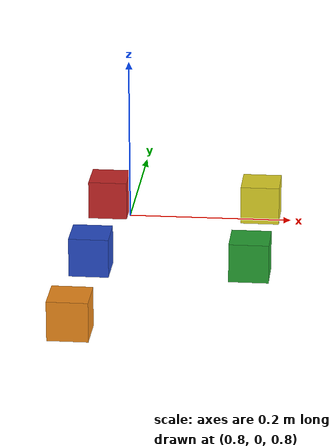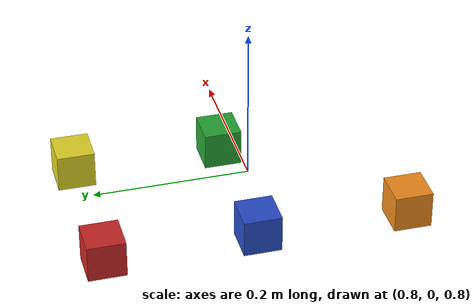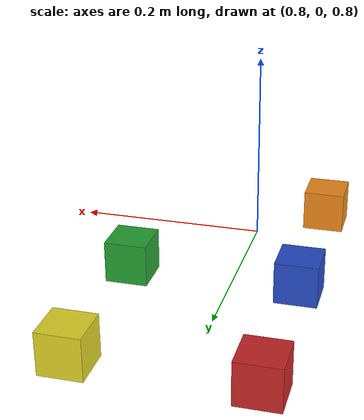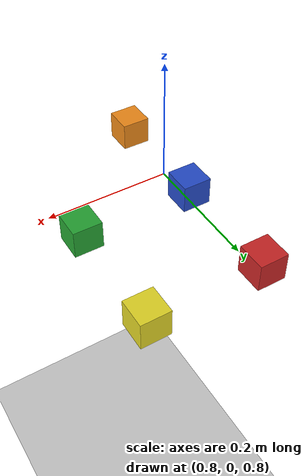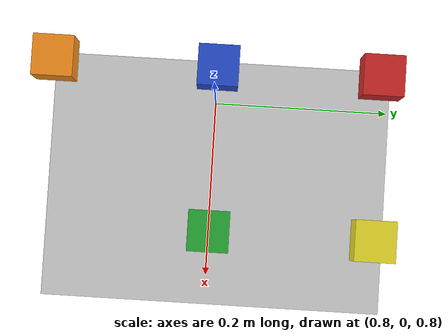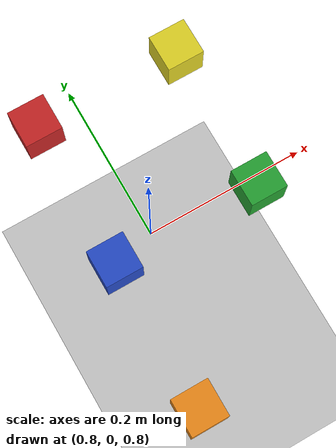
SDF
<sdf version="1.4">
 <world name="simple">
  <include><uri>model://ground_plane</uri></include>
  <include><uri>model://sun</uri></include>
  <include><uri>model://red_cube</uri><pose>0.75 0.2 0.75 0 0 0</pose></include>
  <include><uri>model://blue_cube</uri><pose>0.75 0.0 0.75 0 0 0</pose></include>
  <include><uri>model://orange_cube</uri><pose>0.75 -0.2 0.75 0 0 0</pose></include>
  <include><uri>model://yellow_cube</uri><pose>0.95 0.2 0.75 0 0 0</pose></include>
  <include><uri>model://green_cube</uri><pose>0.95 0.0 0.75 0 0 0</pose></include>
 </world>
</sdf>

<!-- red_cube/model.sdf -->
<sdf version='1.4'>
  <model name="red_cube">
      <static>0</static>
      <link name='link'>
        <inertial>
          <mass>0.4</mass>
          <inertia>
            <ixx>0.001</ixx>
            <ixy>0.000000</ixy>
            <ixz>0.000000</ixz>
            <iyy>0.001</iyy>
            <iyz>0.000000</iyz>
            <izz>0.001</izz>
          </inertia>
        </inertial>
        <collision name='collision'>
          <geometry>
            <box>
              <size>0.050 0.050 0.050</size>
            </box>
          </geometry>
          <surface>
            <friction>
              <ode>
                <mu>30.0</mu>
                <mu2>30.0</mu2>
              </ode>
            </friction>
            <contact>
              <ode>
                <kp>1000000.0</kp>
                <kd>100.0</kd>
                <max_vel>1.0</max_vel>
                <min_depth>0.002</min_depth>
              </ode>
            </contact>
          </surface>
        </collision>
        <visual name='visual'>
          <geometry>
            <box>
              <size>0.050 0.050 0.050</size>
            </box>
          </geometry>
          <material>
            <script>
              <uri>file://media/materials/scripts/gazebo.material</uri>
              <name>Gazebo/Red</name>
            </script>
          </material>
        </visual>
        <velocity_decay>
          <linear>0.000000</linear>
          <angular>0.000000</angular>
        </velocity_decay>
        <self_collide>0</self_collide>
        <kinematic>0</kinematic>
        <gravity>1</gravity>
      </link>
  </model>
</sdf>

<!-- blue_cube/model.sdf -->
<sdf version='1.4'>
  <model name="blue_cube">
      <static>0</static>
      <link name='link'>
        <inertial>
          <mass>0.4</mass>
          <inertia>
            <ixx>0.001</ixx>
            <ixy>0.000000</ixy>
            <ixz>0.000000</ixz>
            <iyy>0.001</iyy>
            <iyz>0.000000</iyz>
            <izz>0.001</izz>
          </inertia>
        </inertial>
        <collision name='collision'>
          <geometry>
            <box>
              <size>0.050 0.050 0.050</size>
            </box>
          </geometry>
          <surface>
            <friction>
              <ode>
                <mu>30.0</mu>
                <mu2>30.0</mu2>
              </ode>
            </friction>
            <contact>
              <ode>
                <kp>1000000.0</kp>
                <kd>100.0</kd>
                <max_vel>1.0</max_vel>
                <min_depth>0.002</min_depth>
              </ode>
            </contact>
          </surface>
        </collision>
        <visual name='visual'>
          <geometry>
            <box>
              <size>0.050 0.050 0.050</size>
            </box>
          </geometry>
          <material>
            <script>
              <uri>file://media/materials/scripts/gazebo.material</uri>
              <name>Gazebo/Blue</name>
            </script>
          </material>
        </visual>
        <velocity_decay>
          <linear>0.000000</linear>
          <angular>0.000000</angular>
        </velocity_decay>
        <self_collide>0</self_collide>
        <kinematic>0</kinematic>
        <gravity>1</gravity>
      </link>
  </model>
</sdf>

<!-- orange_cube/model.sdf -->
<sdf version='1.4'>
  <model name="orange_cube">
      <static>0</static>
      <link name='link'>
        <inertial>
          <mass>0.4</mass>
          <inertia>
            <ixx>0.001</ixx>
            <ixy>0.000000</ixy>
            <ixz>0.000000</ixz>
            <iyy>0.001</iyy>
            <iyz>0.000000</iyz>
            <izz>0.001</izz>
          </inertia>
        </inertial>
        <collision name='collision'>
          <geometry>
            <box>
              <size>0.050 0.050 0.050</size>
            </box>
          </geometry>
          <surface>
            <friction>
              <ode>
                <mu>30.0</mu>
                <mu2>30.0</mu2>
              </ode>
            </friction>
            <contact>
              <ode>
                <kp>1000000.0</kp>
                <kd>100.0</kd>
                <max_vel>1.0</max_vel>
                <min_depth>0.002</min_depth>
              </ode>
            </contact>
          </surface>
        </collision>
        <visual name='visual'>
          <geometry>
            <box>
              <size>0.050 0.050 0.050</size>
            </box>
          </geometry>
          <material>
            <script>
              <uri>file://media/materials/scripts/gazebo.material</uri>
              <name>Gazebo/Orange</name>
            </script>
          </material>
        </visual>
        <velocity_decay>
          <linear>0.000000</linear>
          <angular>0.000000</angular>
        </velocity_decay>
        <self_collide>0</self_collide>
        <kinematic>0</kinematic>
        <gravity>1</gravity>
      </link>
  </model>
</sdf>

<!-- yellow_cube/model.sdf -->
<sdf version='1.4'>
  <model name="yellow_cube">
      <static>0</static>
      <link name='link'>
        <inertial>
          <mass>0.4</mass>
          <inertia>
            <ixx>0.001</ixx>
            <ixy>0.000000</ixy>
            <ixz>0.000000</ixz>
            <iyy>0.001</iyy>
            <iyz>0.000000</iyz>
            <izz>0.001</izz>
          </inertia>
        </inertial>
        <collision name='collision'>
          <geometry>
            <box>
              <size>0.050 0.050 0.050</size>
            </box>
          </geometry>
          <surface>
            <friction>
              <ode>
                <mu>30.0</mu>
                <mu2>30.0</mu2>
              </ode>
            </friction>
            <contact>
              <ode>
                <kp>1000000.0</kp>
                <kd>100.0</kd>
                <max_vel>1.0</max_vel>
                <min_depth>0.002</min_depth>
              </ode>
            </contact>
          </surface>
        </collision>
        <visual name='visual'>
          <geometry>
            <box>
              <size>0.050 0.050 0.050</size>
            </box>
          </geometry>
          <material>
            <script>
              <uri>file://media/materials/scripts/gazebo.material</uri>
              <name>Gazebo/Yellow</name>
            </script>
          </material>
        </visual>
        <velocity_decay>
          <linear>0.000000</linear>
          <angular>0.000000</angular>
        </velocity_decay>
        <self_collide>0</self_collide>
        <kinematic>0</kinematic>
        <gravity>1</gravity>
      </link>
  </model>
</sdf>

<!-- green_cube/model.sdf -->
<sdf version='1.4'>
  <model name="green_cube">
      <static>0</static>
      <link name='link'>
        <inertial>
          <mass>0.4</mass>
          <inertia>
            <ixx>0.001</ixx>
            <ixy>0.000000</ixy>
            <ixz>0.000000</ixz>
            <iyy>0.001</iyy>
            <iyz>0.000000</iyz>
            <izz>0.001</izz>
          </inertia>
        </inertial>
        <collision name='collision'>
          <geometry>
            <box>
              <size>0.050 0.050 0.050</size>
            </box>
          </geometry>
          <surface>
            <friction>
              <ode>
                <mu>30.0</mu>
                <mu2>30.0</mu2>
              </ode>
            </friction>
            <contact>
              <ode>
                <kp>1000000.0</kp>
                <kd>100.0</kd>
                <max_vel>1.0</max_vel>
                <min_depth>0.002</min_depth>
              </ode>
            </contact>
          </surface>
        </collision>
        <visual name='visual'>
          <geometry>
            <box>
              <size>0.050 0.050 0.050</size>
            </box>
          </geometry>
          <material>
            <script>
              <uri>file://media/materials/scripts/gazebo.material</uri>
              <name>Gazebo/Green</name>
            </script>
          </material>
        </visual>
        <velocity_decay>
          <linear>0.000000</linear>
          <angular>0.000000</angular>
        </velocity_decay>
        <self_collide>0</self_collide>
        <kinematic>0</kinematic>
        <gravity>1</gravity>
      </link>
  </model>
</sdf>
